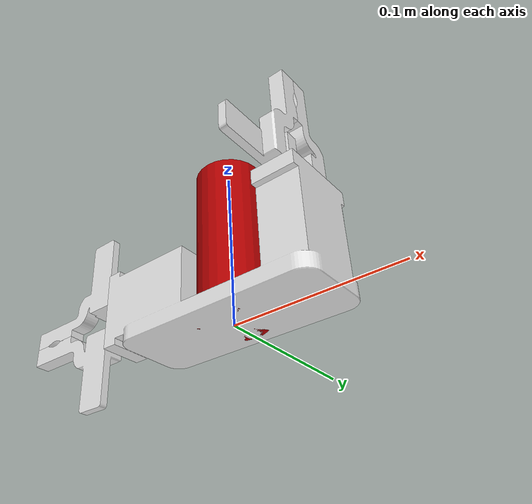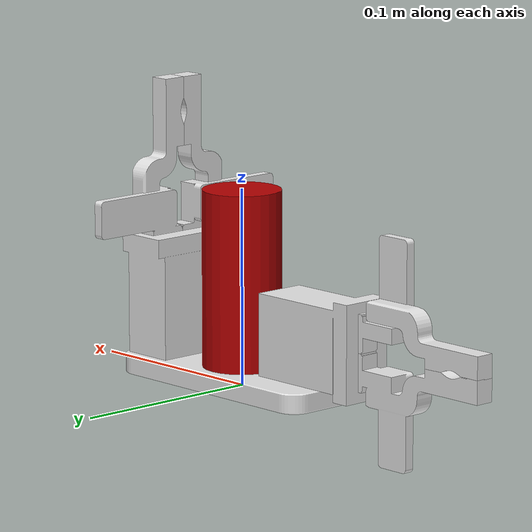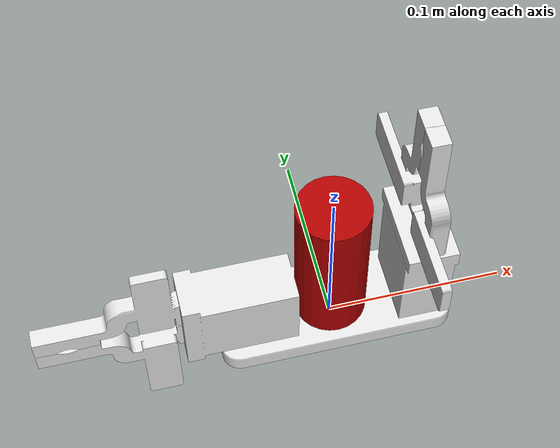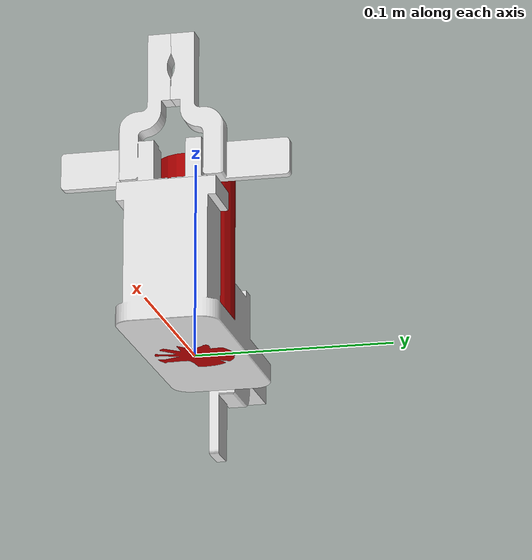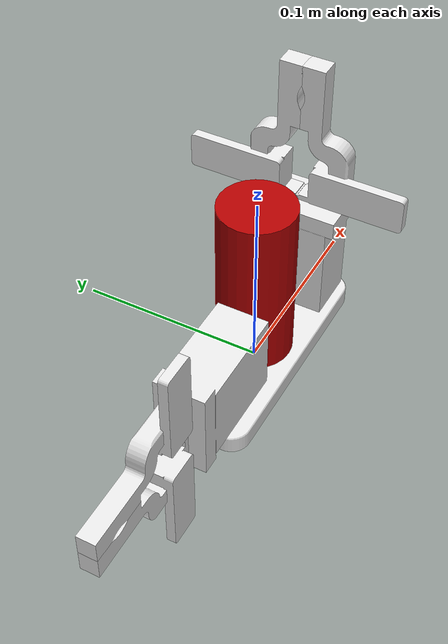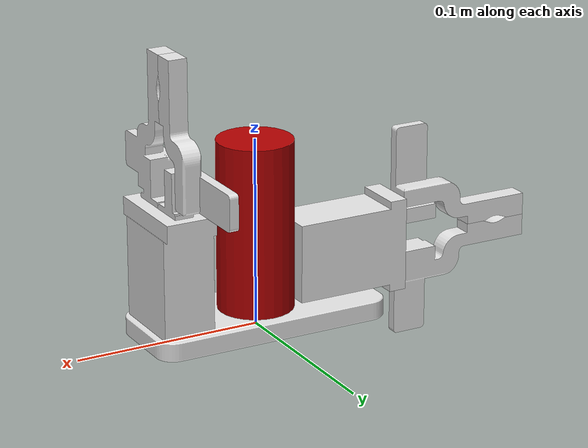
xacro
<?xml version="1.0" ?>
<robot name="za6" xmlns:xacro="http://ros.org/wiki/xacro">
  <xacro:include filename="$(find za6_tools)/urdf/pivot_gripper_macro.xacro"/>

  <material name="main_Red">
    <color rgba="0.7 0.0 0.0 0.99"/>
  </material>

  <link name="world"/>
  <link name="base_link">
    <visual>
      <geometry>
        <cylinder length="0.1" radius="0.02"/>
      </geometry>
      <origin rpy="0 0 0" xyz="0 0 0.05"/>
      <material name="main_Red"/>
    </visual>
  </link>

  <joint name="world-base" type="fixed">
    <parent link="world"/>
    <child link="base_link"/>
  </joint>

  <xacro:pivot_gripper_macro
      prefix=""
      connected_to="base_link"/>
</robot>

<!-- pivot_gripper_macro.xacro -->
<robot xmlns:xacro="http://www.ros.org/wiki/xacro">
  <xacro:macro name="pivot_gripper_macro" params="prefix connected_to">

    <material name="${prefix}Aluminium">
      <color rgba="0.9 0.9 0.9 1.0"/>
    </material>

    <!-- link list -->
    <link name="${prefix}pivot_gripper_base">
      <visual>
        <geometry>
          <mesh filename="package://za6_tools/meshes/pivot_gripper_base.stl"/>
        </geometry>
        <origin rpy="0.0 0.0 0.0" xyz="0 0 0"/>
        <material name="${prefix}Aluminium">
        </material>
      </visual>
      <collision>
        <geometry>
          <mesh filename="package://za6_tools/meshes/pivot_gripper_base_collision.stl"/>
        </geometry>
        <origin rpy="0.0 0.0 0.0" xyz="0 0 0"/>
      </collision>
      <inertial>
        <mass value="100"/>
        <inertia ixx="1.0" ixy="0.0" ixz="0.0" iyy="1.0" iyz="0.0" izz="1.0"/>
      </inertial>
    </link>

    <link name="${prefix}pivot_gripper_finger_left1">
      <visual>
        <geometry>
          <mesh filename="package://za6_tools/meshes/pivot_gripper_finger_left.stl"/>
        </geometry>
        <origin xyz="0 0 0" rpy="0 0 0"/>
        <material name="${prefix}Aluminium"/>
      </visual>
      <collision>
        <geometry>
          <mesh filename="package://za6_tools/meshes/pivot_gripper_finger_left_collision.stl"/>
        </geometry>
        <origin xyz="0 0 0" rpy="0 0 0.0"/>
      </collision>
    </link>

    <link name="${prefix}pivot_gripper_finger_right1">
      <visual>
        <geometry>
          <mesh filename="package://za6_tools/meshes/pivot_gripper_finger_right.stl"/>
        </geometry>
        <origin xyz="0 0 0" rpy="0 0 0"/>
        <material name="${prefix}Aluminium"/>
      </visual>
      <collision>
        <geometry>
          <mesh filename="package://za6_tools/meshes/pivot_gripper_finger_right_collision.stl"/>
        </geometry>
        <origin xyz="0 0 0" rpy="0 0 0.0"/>
      </collision>
    </link>

    <link name="${prefix}pivot_gripper_finger_left2">
      <visual>
        <geometry>
          <mesh filename="package://za6_tools/meshes/pivot_gripper_finger_left.stl"/>
        </geometry>
        <origin xyz="0 0 0" rpy="0 0 0"/>
        <material name="${prefix}Aluminium"/>
      </visual>
      <collision>
        <geometry>
          <mesh filename="package://za6_tools/meshes/pivot_gripper_finger_left_collision.stl"/>
        </geometry>
        <origin xyz="0 0 0" rpy="0 0 0.0"/>
      </collision>
    </link>

    <link name="${prefix}pivot_gripper_finger_right2">
      <visual>
        <geometry>
          <mesh filename="package://za6_tools/meshes/pivot_gripper_finger_right.stl"/>
        </geometry>
        <origin xyz="0 0 0" rpy="0 0 0"/>
        <material name="${prefix}Aluminium"/>
      </visual>
      <collision>
        <geometry>
          <mesh filename="package://za6_tools/meshes/pivot_gripper_finger_right_collision.stl"/>
        </geometry>
        <origin xyz="0 0 0" rpy="0 0 0.0"/>
      </collision>
    </link>

    <!-- joint list -->
    <joint name="${prefix}pivot_gripper_base_joint" type="fixed">
      <parent link="${connected_to}"/>
      <child link="${prefix}pivot_gripper_base"/>
      <axis xyz="0 0 1"/>
      <origin rpy="0.0 0.0 0.0" xyz="0 0 0"/>
    </joint>

    <joint
        name="${prefix}pivot_gripper_finger_left1_joint"
        type="fixed">
      <parent link="${prefix}pivot_gripper_base" />
      <child link="${prefix}pivot_gripper_finger_left1" />
      <axis xyz="0 0 1"/>
      <origin xyz="0.048 0 0.0723" rpy="0 0 -${pi/2.0}" />
    </joint>

    <joint
        name="${prefix}pivot_gripper_finger_right1_joint"
        type="fixed">
      <parent link="${prefix}pivot_gripper_base" />
      <child link="${prefix}pivot_gripper_finger_right1" />
      <axis xyz="0 0 1"/>
      <origin xyz="0.048 0 0.0723" rpy="0 0 -${pi/2.0}" />
    </joint>

    <joint
        name="${prefix}pivot_gripper_finger_left2_joint"
        type="fixed">
      <parent link="${prefix}pivot_gripper_base" />
      <child link="${prefix}pivot_gripper_finger_left2" />
      <axis xyz="0 0 1"/>
      <origin xyz="-0.0843 -0.0053 0.031" rpy="0 -${pi/2.0} 0" />
    </joint>

    <joint
        name="${prefix}pivot_gripper_finger_right2_joint"
        type="fixed">
      <parent link="${prefix}pivot_gripper_base" />
      <child link="${prefix}pivot_gripper_finger_right2" />
      <axis xyz="0 0 1"/>
      <origin xyz="-0.0843 -0.0053 0.031" rpy="0 -${pi/2.0} 0" />
    </joint>

  </xacro:macro>
</robot>
